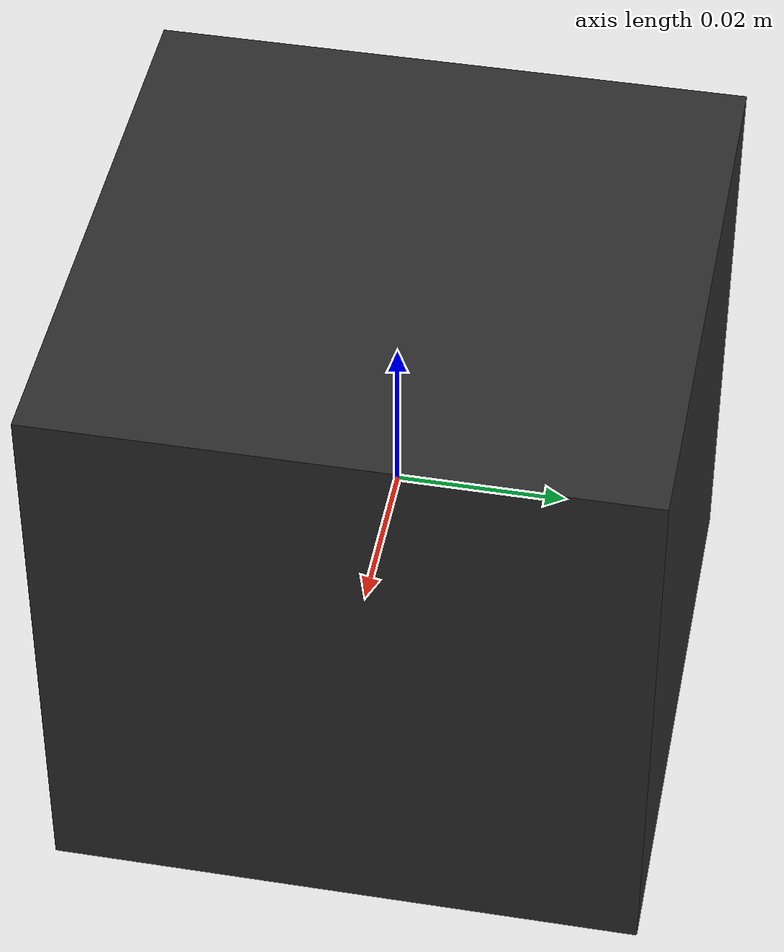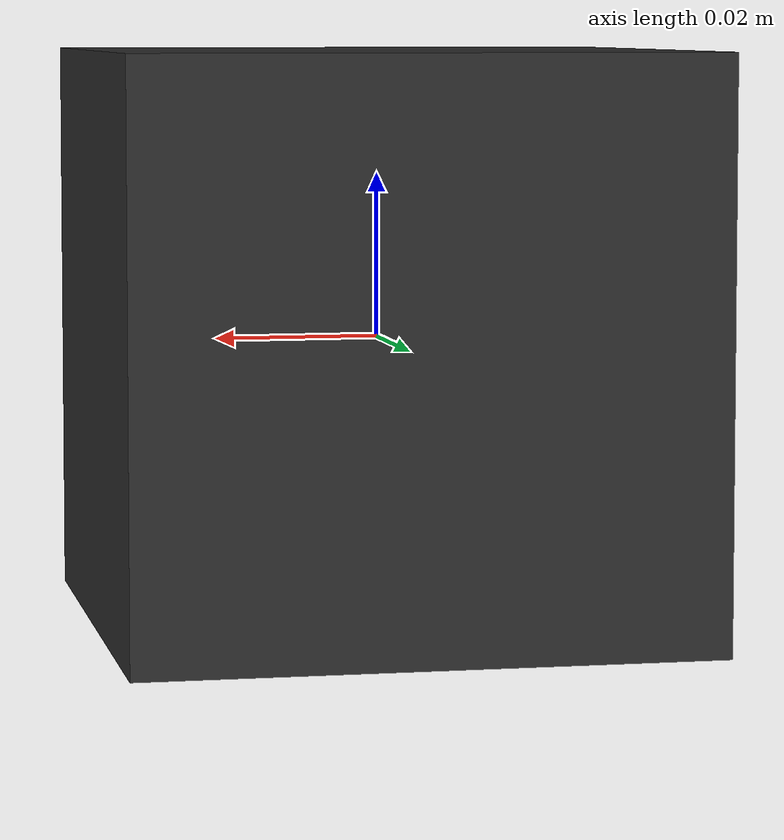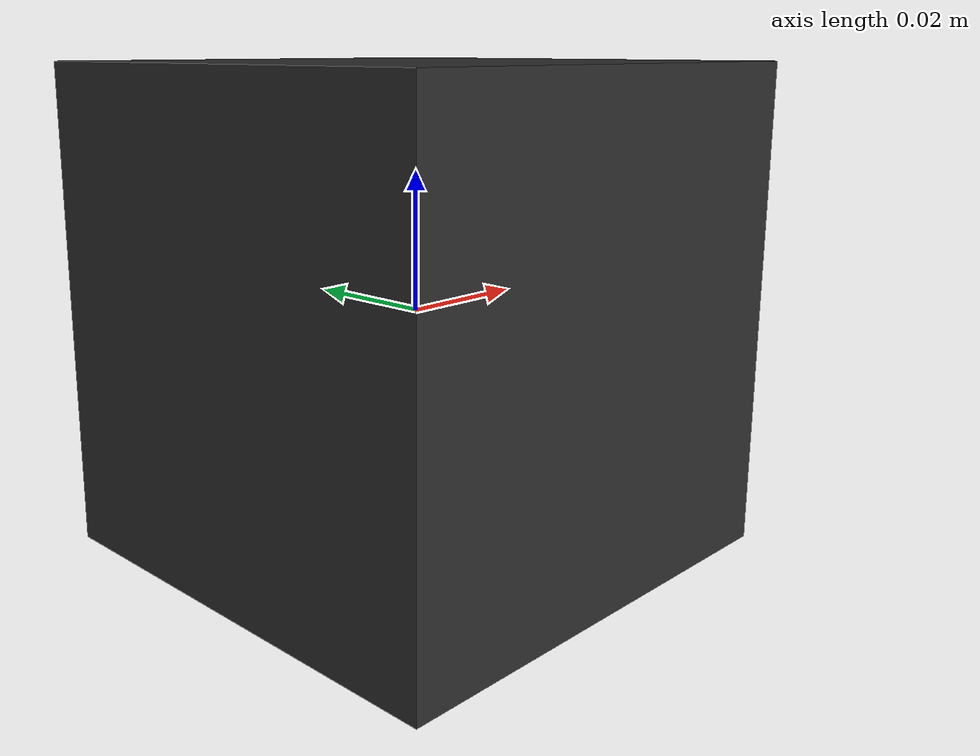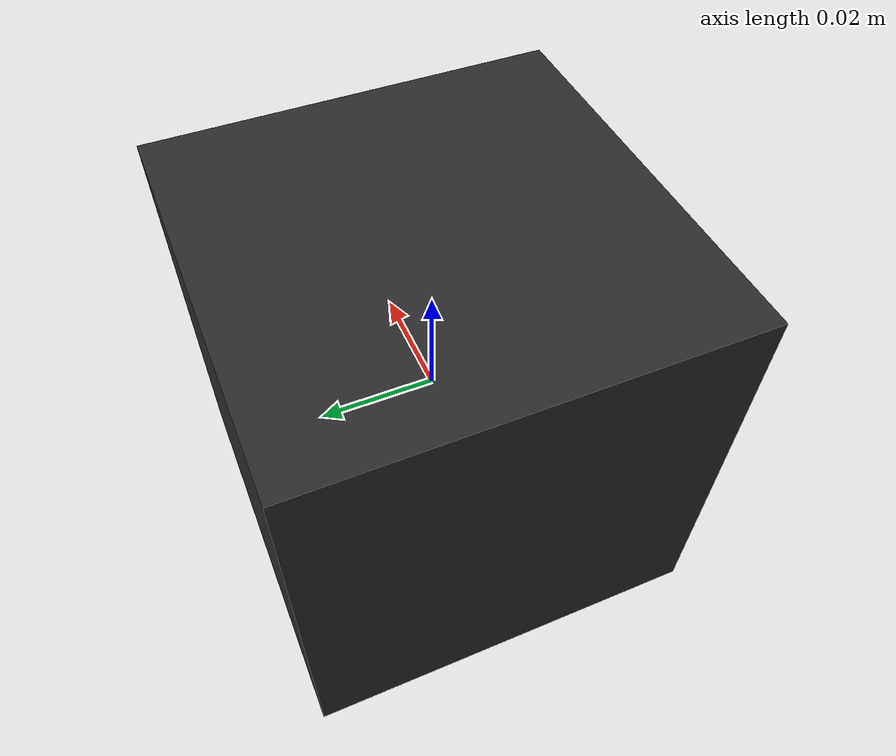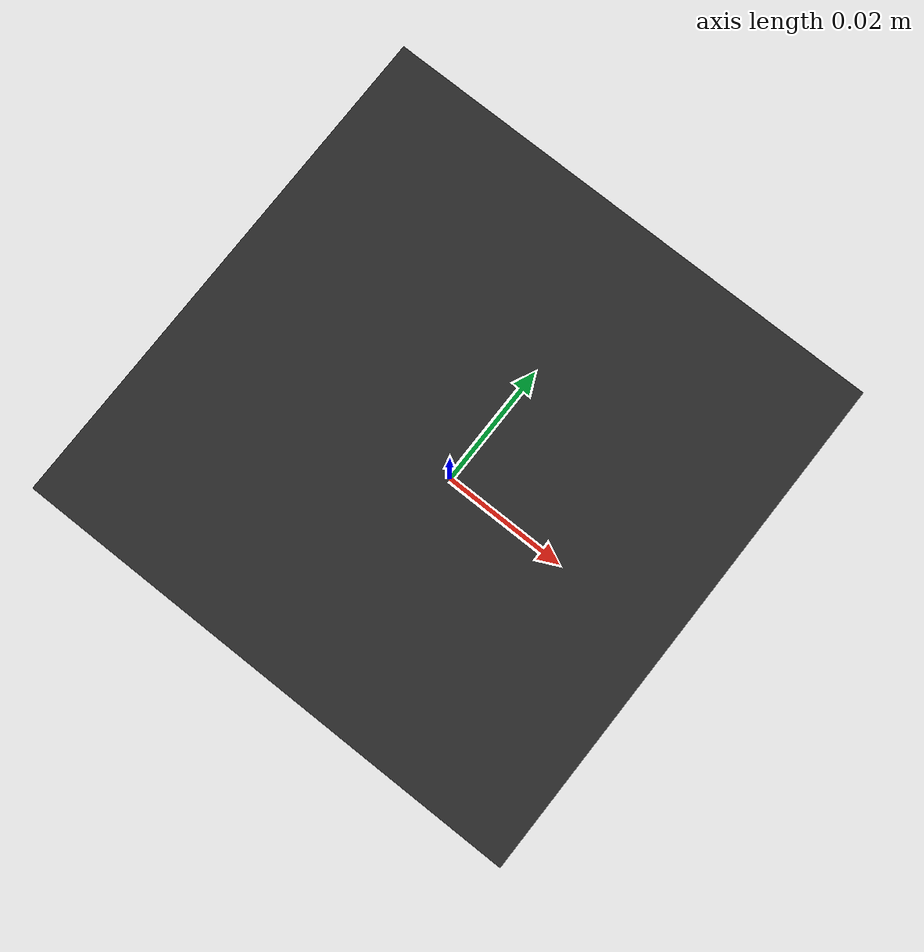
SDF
<?xml version="1.0" encoding="UTF-8"?>
<sdf version='1.8'>
  <model name="pocket_qube">
    <link name="pocket_qube_link">
      <pose>0 0 0 0 0 0</pose>
      <inertial>
        <pose>0 0 0 0 0 0</pose>
        <mass>0.315</mass>
        <inertia>
          <ixx>0.0002573</ixx>
          <ixy>0.0</ixy>
          <ixz>0.0</ixz>
          <iyy>0.0002573</iyy>
          <iyz>0.0</iyz>
          <izz>0.0002573</izz>
        </inertia>
      </inertial>
      <velocity_decay>
        <linear>0.01</linear>
        <angular>0.005</angular>
      </velocity_decay>
      <collision name="pocket_qube_collision">
        <geometry>
          <box>
            <size>0.07 0.07 0.07</size>
          </box>
        </geometry>
        <surface>
          <contact>
            <ode>
              <kp>1e6</kp>
              <kd>100.0</kd>
              <max_vel>0.01</max_vel>
              <min_depth>0.001</min_depth>
            </ode>
          </contact>
        </surface>
      </collision>
      <visual name="pocket_qube_visual">
        <!-- use mesh -->
        <geometry>
          <box>
            <size>0.07 0.07 0.07</size>
          </box>
        </geometry>
        <material>
          <ambient>0.175 0.175 0.175 1.0</ambient>
          <diffuse>0.175 0.175 0.175 1.0</diffuse>
        </material>
      </visual>

      <sensor name="barometer" type="air_pressure">
        <always_on>true</always_on>
        <update_rate>20</update_rate>
        <topic>/pocket_qube/air_pressure</topic>
        <air_pressure>
          <pressure>
            <noise type="gaussian">
              <mean>0.0</mean>
              <stddev>1.0</stddev> <!-- 1 Pa resolution noise -->
            </noise>
          </pressure>
        </air_pressure>
      </sensor>
      <sensor name="altimeter" type="altimeter">
        <always_on>true</always_on>
        <update_rate>20</update_rate>
        <topic>/pocket_qube/altimeter</topic>
        <altimeter>
          <vertical_position>
            <noise type="gaussian">
              <mean>0.0</mean>
              <stddev>0.1</stddev> <!-- 0.1m resolution noise -->
            </noise>
          </vertical_position>
        </altimeter>
      </sensor>
    </link>

    <plugin
      filename="gz-sim-pose-publisher-system"
      name="gz::sim::systems::PosePublisher">
      <publish_model_pose>true</publish_model_pose>
      <publish_link_pose>false</publish_link_pose>
      <use_pose_vector_msg>false</use_pose_vector_msg>
      <update_frequency>50</update_frequency>
    </plugin>

    <plugin filename="libParachute.so" name="cansat::Parachute">
      <link_name>pocket_qube_link</link_name>
      <trigger_mode>manual</trigger_mode>
      <apogee_drop_offset>1.0</apogee_drop_offset>
      <cd>1.61</cd>
      <area>0.196</area> <!-- 50cm canopy -->
      <tether_offset>0.15</tether_offset> <!-- above CoM -->
      <angular_damping>0.0005</angular_damping>
    </plugin>

    <plugin filename="libPayloadEjection.so" name="cansat::PayloadEjection">
      <payload_link_name>pocket_qube_link</payload_link_name>
      <detach_topic>/rocket/pocket_qube/detach</detach_topic>
      <trigger_mode>apogee</trigger_mode>
      <min_altitude>20.0</min_altitude>
      <apogee_drop_offset>20.0</apogee_drop_offset>
      <force>3.0</force>
      <duration>0.05</duration>
    </plugin>
  </model>
</sdf>
